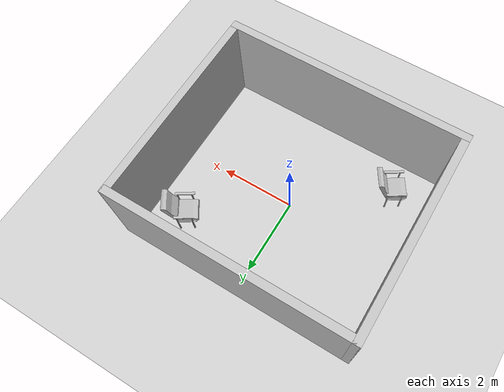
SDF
<?xml version="1.0"?>
<sdf version="1.6">
  <world name="locateanything_chairs">
    <include><uri>model://sun</uri></include>
    <include><uri>model://ground_plane</uri></include>
    <physics type="ode"><real_time_factor>1.0</real_time_factor><max_step_size>0.001</max_step_size></physics>
    <scene><ambient>0.5 0.5 0.5 1</ambient><background>0.7 0.75 0.8 1</background></scene>
    <!-- Ground truth/reset service used by validation and manual reset only. -->
    <plugin name="gazebo_ros_state" filename="libgazebo_ros_state.so">
      <ros><namespace>/gazebo</namespace></ros><update_rate>10</update_rate>
    </plugin>
    <model name="wall_east"><static>true</static><pose>3.1 0 1.25 0 0 0</pose>
      <link name="wall"><collision name="collision"><geometry><box><size>0.2 5.4 2.5</size></box></geometry></collision>
        <visual name="visual"><geometry><box><size>0.2 5.4 2.5</size></box></geometry>
          <material><ambient>0.65 0.65 0.65 1</ambient><diffuse>0.75 0.75 0.75 1</diffuse></material>
        </visual>
      </link>
    </model>
    <model name="wall_west"><static>true</static><pose>-3.1 0 1.25 0 0 0</pose>
      <link name="wall"><collision name="collision"><geometry><box><size>0.2 5.4 2.5</size></box></geometry></collision>
        <visual name="visual"><geometry><box><size>0.2 5.4 2.5</size></box></geometry>
          <material><ambient>0.65 0.65 0.65 1</ambient><diffuse>0.75 0.75 0.75 1</diffuse></material>
        </visual>
      </link>
    </model>
    <model name="wall_north"><static>true</static><pose>0 2.6 1.25 0 0 0</pose>
      <link name="wall"><collision name="collision"><geometry><box><size>6.4 0.2 2.5</size></box></geometry></collision>
        <visual name="visual"><geometry><box><size>6.4 0.2 2.5</size></box></geometry>
          <material><ambient>0.65 0.65 0.65 1</ambient><diffuse>0.75 0.75 0.75 1</diffuse></material>
        </visual>
      </link>
    </model>
    <model name="wall_south"><static>true</static><pose>0 -2.6 1.25 0 0 0</pose>
      <link name="wall"><collision name="collision"><geometry><box><size>6.4 0.2 2.5</size></box></geometry></collision>
        <visual name="visual"><geometry><box><size>6.4 0.2 2.5</size></box></geometry>
          <material><ambient>0.65 0.65 0.65 1</ambient><diffuse>0.75 0.75 0.75 1</diffuse></material>
        </visual>
      </link>
    </model>
    <include><uri>model://Project3RedChair</uri><name>demo_red_chair</name><pose>2.1 1.6 0 0 0 -1.0</pose></include>
    <include><uri>model://Project3BlueChair</uri><name>demo_blue_chair</name><pose>-2.1 -1.6 0 0 0 -1.0</pose></include>
  </world>
</sdf>

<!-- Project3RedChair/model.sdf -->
<sdf version="1.6">
  <model name="Project3RedChair">
    <static>true</static>
    <link name="body">
      <visual name="visual">
        <geometry><mesh><uri>model://Project3RedChair/meshes/chair.obj</uri></mesh></geometry>
      </visual>
      <collision name="collision">
        <geometry><mesh><uri>model://VisitorChair/meshes/VisitorChair_Col.obj</uri></mesh></geometry>
      </collision>
    </link>
  </model>
</sdf>

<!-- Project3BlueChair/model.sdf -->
<sdf version="1.6">
  <model name="Project3BlueChair">
    <static>true</static>
    <link name="body">
      <visual name="visual">
        <geometry><mesh><uri>model://Project3BlueChair/meshes/chair.obj</uri></mesh></geometry>
      </visual>
      <collision name="collision">
        <geometry><mesh><uri>model://VisitorChair/meshes/VisitorChair_Col.obj</uri></mesh></geometry>
      </collision>
    </link>
  </model>
</sdf>
